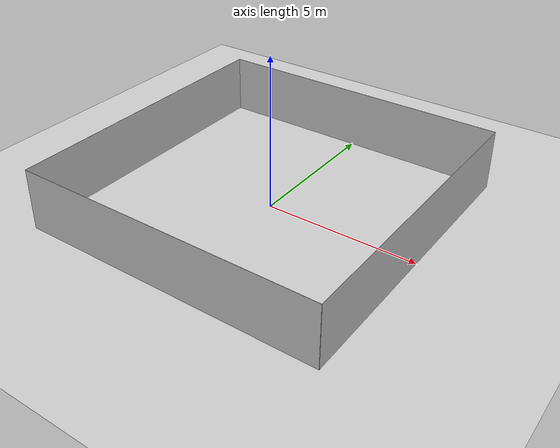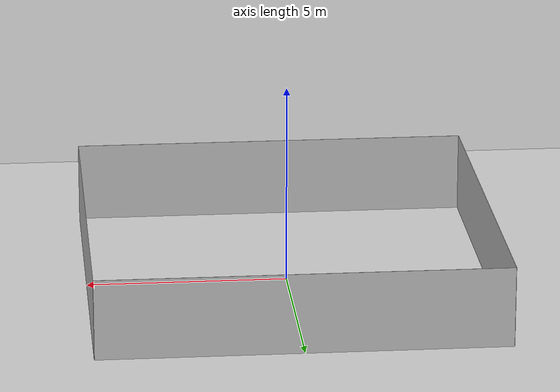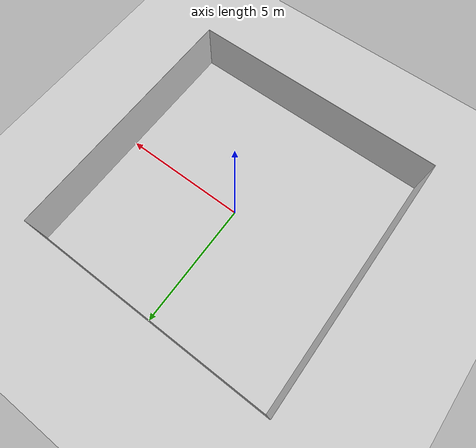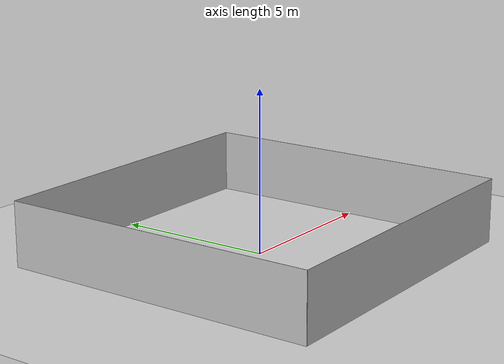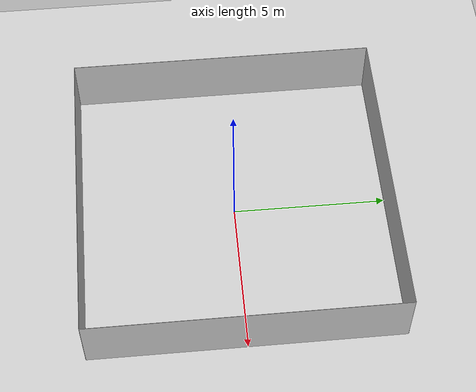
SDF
<?xml version="1.0"?>
<sdf version="1.8">
  <world name="simple">
    <scene>
      <grid>false</grid>
    </scene>
    <physics name="1ms" type="ignored">
      <max_step_size>0.002</max_step_size>
      <real_time_factor>1.0</real_time_factor>
    </physics>
    <plugin
      filename="libignition-gazebo-physics-system.so"
      name="ignition::gazebo::systems::Physics">
    </plugin>
    <plugin
      filename="libignition-gazebo-sensors-system.so"
      name="ignition::gazebo::systems::Sensors">
      <render_engine>ogre</render_engine>
      <namespace>test</namespace>
    </plugin>
    <plugin
        filename="ignition-gazebo-imu-system"
        name="ignition::gazebo::systems::Imu">
    </plugin>
    <plugin
      filename="libignition-gazebo-user-commands-system.so"
      name="ignition::gazebo::systems::UserCommands">
    </plugin>
    <plugin
      filename="libignition-gazebo-scene-broadcaster-system.so"
      name="ignition::gazebo::systems::SceneBroadcaster">
    </plugin>

    <light type="directional" name="sun">
      <cast_shadows>false</cast_shadows>
      <pose>0 0 10 0 0 0</pose>
      <diffuse>0.8 0.8 0.8 1</diffuse>
      <specular>0.2 0.2 0.2 1</specular>
      <attenuation>
        <range>1000</range>
        <constant>0.9</constant>
        <linear>0.01</linear>
        <quadratic>0.001</quadratic>
      </attenuation>
      <direction>-0.5 0.1 -0.9</direction>
    </light>

    <model name="ground_plane">
      <static>true</static>
      <link name="link">
        <collision name="collision">
          <geometry>
            <plane>
              <normal>0.0 0.0 1.0</normal>
            </plane>
          </geometry>
        </collision>
        <visual name="visual">
          <geometry>
            <plane>
              <normal>0.0 0.0 1.0</normal>
              <size>100 100</size>
            </plane>
          </geometry>
          <material>
            <ambient>0.8 0.8 0.8 1</ambient>
            <diffuse>0.8 0.8 0.8 1</diffuse>
            <specular>0.8 0.8 0.8 1</specular>
          </material>
        </visual>
      </link>
    </model>

    <model name='border'>
	    <pose>0 0 1 0 0 0</pose>
	    <static>true</static>
	    <link name='wall1'>
		<pose>-5.005 0 0 0 0 0</pose>
		<static>true</static>
		<collision name='wall1_collision'>
		    <geometry>
			<box>
			    <size>0.01 10 2</size>
			</box>
		    </geometry>
		</collision>
		<visual name='wall1_visual'>
		    <geometry>
			<box>
			    <size>0.01 10 2</size>
			</box>
		    </geometry>
		    <material>
            <ambient>0.8 0.8 0.8 1</ambient>
			<diffuse>0.8 0.8 0.8 1</diffuse>
			<specular>0.8 0.8 0.8 1</specular>
		    </material>
		</visual>
	    </link>
	    <link name='wall2'>
		<pose>5.005 0 0 0 0 0</pose>
		<static>true</static>
		<collision name='wall2_collision'>
		    <geometry>
			<box>
			    <size>0.01 10 2</size>
			</box>
		    </geometry>
		</collision>
		<visual name='wall2_visual'>
		    <geometry>
			<box>
			    <size>0.01 10 2</size>
			</box>
		    </geometry>
		    <material>
            <ambient>0.8 0.8 0.8 1</ambient>
			<diffuse>0.8 0.8 0.8 1</diffuse>
			<specular>0.8 0.8 0.8 1</specular>
		    </material>
		</visual>
	    </link>
	    <link name='wall3'>
		<pose>0 5.005 0 0 0 0</pose>
		<static>true</static>
		<collision name='wall3_collision'>
		    <geometry>
			<box>
			    <size>10 0.01 2</size>
			</box>
		    </geometry>
		</collision>
		<visual name='wall3_visual'>
		    <geometry>
			<box>
			    <size>10 0.01 2</size>
			</box>
		    </geometry>
		    <material>
            <ambient>0.8 0.8 0.8 1</ambient>
			<diffuse>0.8 0.8 0.8 1</diffuse>
			<specular>0.8 0.8 0.8 1</specular>
		    </material>
		</visual>
	    </link>
	    <link name='wall4'>
		<pose>0 -5.005 0 0 0 0</pose>
		<static>true</static>
		<collision name='wall4_collision'>
		    <geometry>
			<box>
			    <size>10 0.01 2</size>
			</box>
		    </geometry>
		</collision>
		<visual name='wall4_visual'>
		    <geometry>
			<box>
			    <size>10 0.01 2</size>
			</box>
		    </geometry>
		    <material>
            <ambient>0.8 0.8 0.8 1</ambient>
			<diffuse>0.8 0.8 0.8 1</diffuse>
			<specular>0.8 0.8 0.8 1</specular>
		    </material>
		</visual>
	    </link>
	</model>

  </world>
</sdf>
